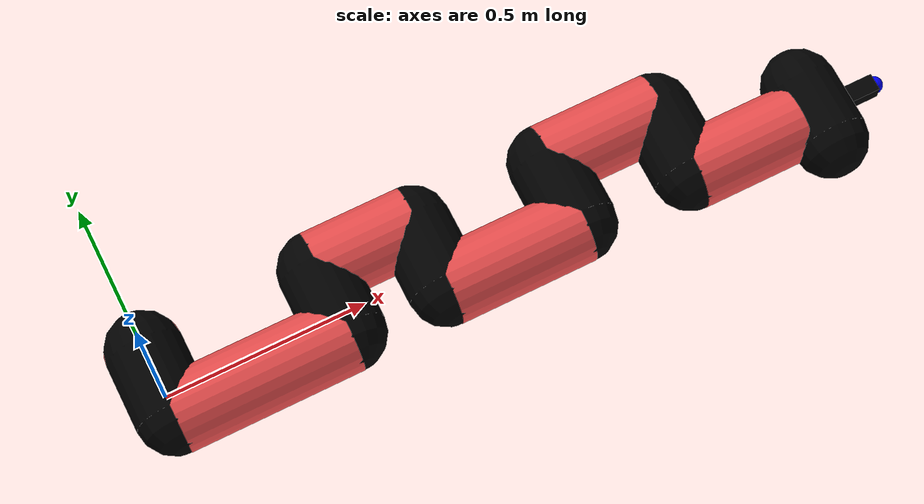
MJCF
<mujoco model="manipulator">
		<compiler angle="degree" coordinate="local" inertiafromgeom="auto" meshdir="meshes/"/>
		<option gravity="0 0 0" integrator="RK4" iterations="30" timestep="0.01"/>

		<default>
		<joint armature="1" limited="true" stiffness="10" damping="15" frictionloss="5.0"/>
		<geom conaffinity="1" condim="3" contype="1" friction=".5 .1 .1" margin="0.002"/>
		<motor ctrllimited="true"/>
		<position ctrllimited="true"/>
		</default>

		<asset>
		<texture builtin="gradient" height="100" rgb1="1.0 1.0 1.0" rgb2="1.0 1.0 1.0" type="skybox" width="100"/>
		<texture builtin="flat" height="32" name="arm_tex" rgb1="0.9 0.3 0.3" type="2d" width="32"/>
		<texture builtin="flat" height="32" name="gripper_tex" rgb1="0.0 0.0 0.0" type="cube" width="32"/>

		<material name="arm_mat" shininess="0.1" specular="0.1" texture="arm_tex"/>
		<material name="gripper_mat" shininess="1" specular="1" texture="gripper_tex"/>
		</asset>

		<worldbody>
		<light cutoff="45" diffuse=".8 .8 .8" dir="0 0.16 -1" directional="false" name="light" pos="0 -2.0 8.0" specular="0.3 0.3 0.3"/>

		<body name="base_link" pos="0 0 -0.1">
		<geom fromto="0 0 0 0 0 0.1" material="arm_mat" name="base_link" rgba="0.0 0.0 0.0 1" size="0.085" type="cylinder"/>
		</body>

		<body name="l1" pos="0 0 0">
<geom fromto="0 0 0 0 0 0.37" material="arm_mat" name="l1" rgba="0.9 0.3 0.3 1" size="0.085" type="cylinder"/>
<geom fromto="0 0 0.37 0 -0.16 0.37" material="arm_mat" name="l1_ex" rgba="0.0 0.0 0.0 1" size="0.085" type="capsule"/>
<joint axis="0 0 1" name="j1" pos="0 0 0" range="-90 90" damping="24.29" frictionloss="10.5"/>

<body name="l2" pos="0 -0.16 0.37">
<geom fromto="0 0 0 0.4 0 0" material="arm_mat" name="l2" rgba="0.9 0.3 0.3 1" size="0.085" type="cylinder"/>
<geom fromto="0.4 0 0 0.4 0.16 0" material="arm_mat" name="l2_ex" rgba="0.0 0.0 0.0 1" size="0.085" type="capsule"/>
<joint axis="0.08 1.1 0.06" name="j2" pos="0 0 0" range="-90 60" damping="26.93" frictionloss="8.74"/>

<body name="l3" pos="0.4 0.16 0">
<geom fromto="0 0 0 0.23 0 0" material="arm_mat" name="l3" rgba="0.9 0.3 0.3 1" size="0.085" type="cylinder"/>
<geom fromto="0.23 0 0 0.23 -0.16 0" material="arm_mat" name="l3_ex" rgba="0.0 0.0 0.0 1" size="0.085" type="capsule"/>
<joint axis="0.15 0.77 0.14" name="j3" pos="0 0 0" range="-30 60" damping="25.35" frictionloss="9.69"/>

<body name="l4" pos="0.23 -0.16 0">
<geom fromto="0 0 0 0.32 0 0" material="arm_mat" name="l4" rgba="0.9 0.3 0.3 1" size="0.085" type="cylinder"/>
<geom fromto="0.32 0 0 0.32 0.16 0" material="arm_mat" name="l4_ex" rgba="0.0 0.0 0.0 1" size="0.085" type="capsule"/>
<joint axis="0.12 0.88 -0.12" name="j4" pos="0 0 0" range="-30 60" damping="31.58" frictionloss="11.68"/>

<body name="l5" pos="0.32 0.16 0">
<geom fromto="0 0 0 0.27 0 0" material="arm_mat" name="l5" rgba="0.9 0.3 0.3 1" size="0.085" type="cylinder"/>
<geom fromto="0.27 0 0 0.27 -0.16 0" material="arm_mat" name="l5_ex" rgba="0.0 0.0 0.0 1" size="0.085" type="capsule"/>
<joint axis="0.07 0.92 0.15" name="j5" pos="0 0 0" range="-30 60" damping="30.64" frictionloss="8.87"/>

<body name="l6" pos="0.27 -0.16 0">
<geom fromto="0 0 0 0.26 0 0" material="arm_mat" name="l6" rgba="0.9 0.3 0.3 1" size="0.085" type="cylinder"/>
<joint axis="-0.03 1.14 0.25" name="j6" pos="0 0 0" range="-30 60" damping="32.75" frictionloss="11.46"/>

<body name="gripper" pos="0.26 0 0">
<geom fromto="0.05 -0.07 0 0.05 0.07 0" material="gripper_mat" name="gripper" rgba="0.0 0.0 0.0 1" size="0.085" type="capsule"/><joint axis="1 0 0" name="j7" pos="0 0 0" range="-90 90" damping="15" frictionloss="5.0"/><body name="finger" pos="0.1 0 0">
<geom fromto="0 0.0 0 0.1 0.0 0" material="gripper_mat" name="finger" rgba="0.0 0.0 0.0 1" size="0.020 0.06 0.06" type="box"/>
</body>
<site name="current" pos="0.2 0. 0.0" rgba="0. 0. 1.0 1" size="0.02" type="sphere"/>
</body>
</body>
</body>
</body>
</body>
</body>
</body>
</worldbody>
<actuator>
<motor ctrllimited="true" ctrlrange="-1.0 1.0" joint="j1" gear="76.33"/>
<motor ctrllimited="true" ctrlrange="-1.0 1.0" joint="j2" gear="89.98"/>
<motor ctrllimited="true" ctrlrange="-1.0 1.0" joint="j3" gear="60.84"/>
<motor ctrllimited="true" ctrlrange="-1.0 1.0" joint="j4" gear="68.26"/>
<motor ctrllimited="true" ctrlrange="-1.0 1.0" joint="j5" gear="83.43"/>
<motor ctrllimited="true" ctrlrange="-1.0 1.0" joint="j6" gear="92.35"/>
<motor ctrllimited="true" ctrlrange="-1.0 1.0" joint="j7" gear="80"/>
</actuator>
</mujoco>
